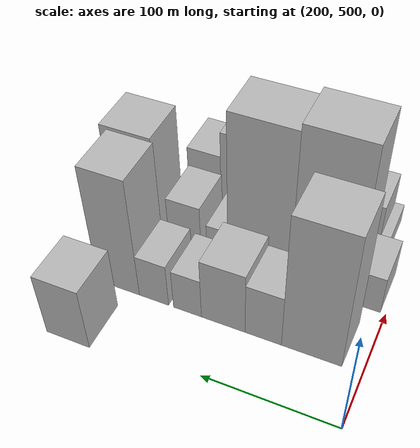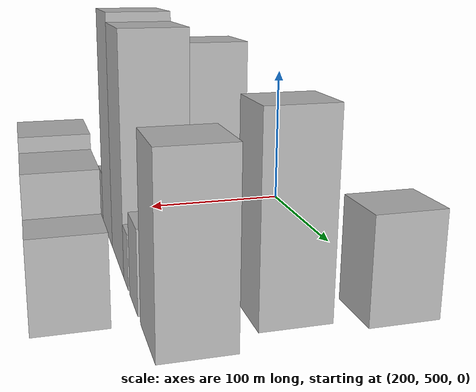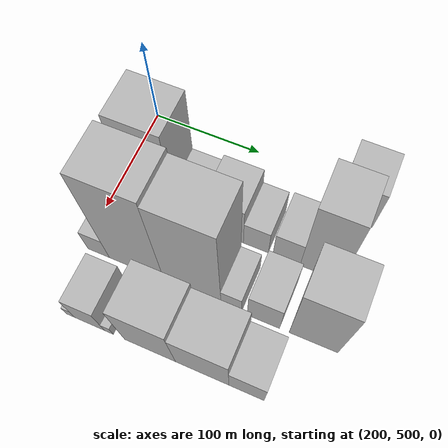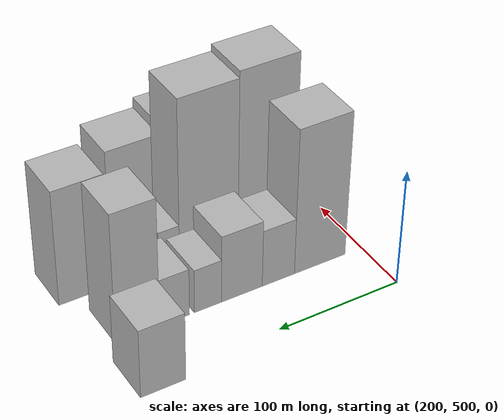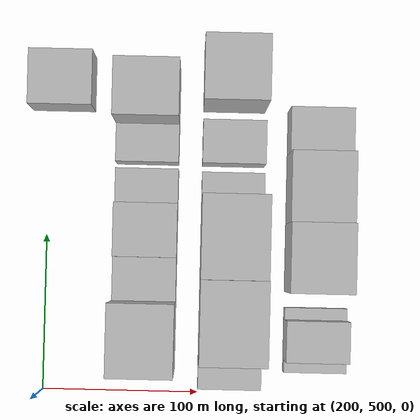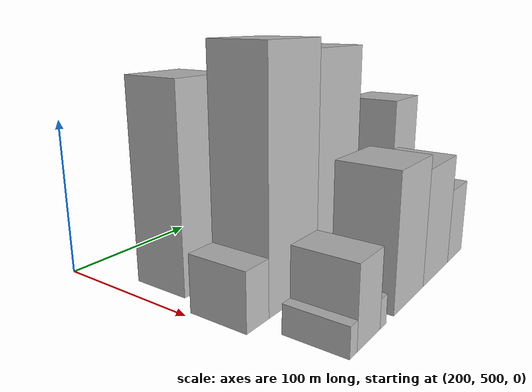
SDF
<sdf version="1.6">
 <world name="default">
  <model name="building_147">
   <static>1</static>
   <pose>210.0000 697.8146 0 0.000000 0.000000 0.000000</pose>
   <link name="link">
    <pose>0 0 30.00 0 0 0</pose>
    <collision name="collision"><geometry><box><size>40.0000 34.5260 60.0000</size></box></geometry></collision>
    <visual name="visual">
     <cast_shadows>0</cast_shadows>
     <geometry><box><size>40.0000 34.5260 60.0000</size></box></geometry>
     <material>
      <script>
       <uri>model://HANNAS_wall/materials/scripts</uri>
       <uri>model://HANNAS_wall/materials/textures</uri>
       <name>vrc/HANNAS_wall</name>
      </script>
     </material>
    </visual>
   </link>
  </model>
  <model name="building_193">
   <static>1</static>
   <pose>265.0000 537.1006 0 0.000000 0.000000 0.000000</pose>
   <link name="link">
    <pose>0 0 64.50 0 0 0</pose>
    <collision name="collision"><geometry><box><size>40.0000 44.1654 129.0000</size></box></geometry></collision>
    <visual name="visual">
     <cast_shadows>0</cast_shadows>
     <geometry><box><size>40.0000 44.1654 129.0000</size></box></geometry>
     <material>
      <script>
       <uri>model://HANNAS_wall/materials/scripts</uri>
       <uri>model://HANNAS_wall/materials/textures</uri>
       <name>vrc/HANNAS_wall</name>
      </script>
     </material>
    </visual>
   </link>
  </model>
  <model name="building_194">
   <static>1</static>
   <pose>265.0000 572.9187 0 0.000000 0.000000 0.000000</pose>
   <link name="link">
    <pose>0 0 25.50 0 0 0</pose>
    <collision name="collision"><geometry><box><size>40.0000 27.4708 51.0000</size></box></geometry></collision>
    <visual name="visual">
     <cast_shadows>0</cast_shadows>
     <geometry><box><size>40.0000 27.4708 51.0000</size></box></geometry>
     <material>
      <script>
       <uri>model://HANNAS_wall/materials/scripts</uri>
       <uri>model://HANNAS_wall/materials/textures</uri>
       <name>vrc/HANNAS_wall</name>
      </script>
     </material>
    </visual>
   </link>
  </model>
  <model name="building_195">
   <static>1</static>
   <pose>265.0000 603.5861 0 0.000000 0.000000 0.000000</pose>
   <link name="link">
    <pose>0 0 30.00 0 0 0</pose>
    <collision name="collision"><geometry><box><size>40.0000 33.8638 60.0000</size></box></geometry></collision>
    <visual name="visual">
     <cast_shadows>0</cast_shadows>
     <geometry><box><size>40.0000 33.8638 60.0000</size></box></geometry>
     <material>
      <script>
       <uri>model://HANNAS_wall/materials/scripts</uri>
       <uri>model://HANNAS_wall/materials/textures</uri>
       <name>vrc/HANNAS_wall</name>
      </script>
     </material>
    </visual>
   </link>
  </model>
  <model name="building_196">
   <static>1</static>
   <pose>265.0000 631.6752 0 0.000000 0.000000 0.000000</pose>
   <link name="link">
    <pose>0 0 19.50 0 0 0</pose>
    <collision name="collision"><geometry><box><size>40.0000 22.3145 39.0000</size></box></geometry></collision>
    <visual name="visual">
     <cast_shadows>0</cast_shadows>
     <geometry><box><size>40.0000 22.3145 39.0000</size></box></geometry>
     <material>
      <script>
       <uri>model://HANNAS_wall/materials/scripts</uri>
       <uri>model://HANNAS_wall/materials/textures</uri>
       <name>vrc/HANNAS_wall</name>
      </script>
     </material>
    </visual>
   </link>
  </model>
  <model name="building_197">
   <static>1</static>
   <pose>265.0000 658.7979 0 0.000000 0.000000 0.000000</pose>
   <link name="link">
    <pose>0 0 21.00 0 0 0</pose>
    <collision name="collision"><geometry><box><size>40.0000 23.9310 42.0000</size></box></geometry></collision>
    <visual name="visual">
     <cast_shadows>0</cast_shadows>
     <geometry><box><size>40.0000 23.9310 42.0000</size></box></geometry>
     <material>
      <script>
       <uri>model://HANNAS_wall/materials/scripts</uri>
       <uri>model://HANNAS_wall/materials/textures</uri>
       <name>vrc/HANNAS_wall</name>
      </script>
     </material>
    </visual>
   </link>
  </model>
  <model name="building_198">
   <static>1</static>
   <pose>265.0000 688.1856 0 0.000000 0.000000 0.000000</pose>
   <link name="link">
    <pose>0 0 57.00 0 0 0</pose>
    <collision name="collision"><geometry><box><size>40.0000 34.8444 114.0000</size></box></geometry></collision>
    <visual name="visual">
     <cast_shadows>0</cast_shadows>
     <geometry><box><size>40.0000 34.8444 114.0000</size></box></geometry>
     <material>
      <script>
       <uri>model://HANNAS_wall/materials/scripts</uri>
       <uri>model://HANNAS_wall/materials/textures</uri>
       <name>vrc/HANNAS_wall</name>
      </script>
     </material>
    </visual>
   </link>
  </model>
  <model name="building_245">
   <static>1</static>
   <pose>320.0000 514.0843 0 0.000000 0.000000 0.000000</pose>
   <link name="link">
    <pose>0 0 18.00 0 0 0</pose>
    <collision name="collision"><geometry><box><size>40.0000 19.9829 36.0000</size></box></geometry></collision>
    <visual name="visual">
     <cast_shadows>0</cast_shadows>
     <geometry><box><size>40.0000 19.9829 36.0000</size></box></geometry>
     <material>
      <script>
       <uri>model://HANNAS_wall/materials/scripts</uri>
       <uri>model://HANNAS_wall/materials/textures</uri>
       <name>vrc/HANNAS_wall</name>
      </script>
     </material>
    </visual>
   </link>
  </model>
  <model name="building_246">
   <static>1</static>
   <pose>320.0000 549.1203 0 0.000000 0.000000 0.000000</pose>
   <link name="link">
    <pose>0 0 75.00 0 0 0</pose>
    <collision name="collision"><geometry><box><size>40.0000 50.0892 150.0000</size></box></geometry></collision>
    <visual name="visual">
     <cast_shadows>0</cast_shadows>
     <geometry><box><size>40.0000 50.0892 150.0000</size></box></geometry>
     <material>
      <script>
       <uri>model://HANNAS_wall/materials/scripts</uri>
       <uri>model://HANNAS_wall/materials/textures</uri>
       <name>vrc/HANNAS_wall</name>
      </script>
     </material>
    </visual>
   </link>
  </model>
  <model name="building_247">
   <static>1</static>
   <pose>320.0000 599.2114 0 0.000000 0.000000 0.000000</pose>
   <link name="link">
    <pose>0 0 72.00 0 0 0</pose>
    <collision name="collision"><geometry><box><size>40.0000 50.0929 144.0000</size></box></geometry></collision>
    <visual name="visual">
     <cast_shadows>0</cast_shadows>
     <geometry><box><size>40.0000 50.0929 144.0000</size></box></geometry>
     <material>
      <script>
       <uri>model://HANNAS_wall/materials/scripts</uri>
       <uri>model://HANNAS_wall/materials/textures</uri>
       <name>vrc/HANNAS_wall</name>
      </script>
     </material>
    </visual>
   </link>
  </model>
  <model name="building_248">
   <static>1</static>
   <pose>320.0000 632.9484 0 0.000000 0.000000 0.000000</pose>
   <link name="link">
    <pose>0 0 16.50 0 0 0</pose>
    <collision name="collision"><geometry><box><size>40.0000 17.3810 33.0000</size></box></geometry></collision>
    <visual name="visual">
     <cast_shadows>0</cast_shadows>
     <geometry><box><size>40.0000 17.3810 33.0000</size></box></geometry>
     <material>
      <script>
       <uri>model://HANNAS_wall/materials/scripts</uri>
       <uri>model://HANNAS_wall/materials/textures</uri>
       <name>vrc/HANNAS_wall</name>
      </script>
     </material>
    </visual>
   </link>
  </model>
  <model name="building_249">
   <static>1</static>
   <pose>320.0000 660.3754 0 0.000000 0.000000 0.000000</pose>
   <link name="link">
    <pose>0 0 24.00 0 0 0</pose>
    <collision name="collision"><geometry><box><size>40.0000 27.4731 48.0000</size></box></geometry></collision>
    <visual name="visual">
     <cast_shadows>0</cast_shadows>
     <geometry><box><size>40.0000 27.4731 48.0000</size></box></geometry>
     <material>
      <script>
       <uri>model://HANNAS_wall/materials/scripts</uri>
       <uri>model://HANNAS_wall/materials/textures</uri>
       <name>vrc/HANNAS_wall</name>
      </script>
     </material>
    </visual>
   </link>
  </model>
  <model name="building_250">
   <static>1</static>
   <pose>320.0000 702.2115 0 0.000000 0.000000 0.000000</pose>
   <link name="link">
    <pose>0 0 51.00 0 0 0</pose>
    <collision name="collision"><geometry><box><size>40.0000 40.1990 102.0000</size></box></geometry></collision>
    <visual name="visual">
     <cast_shadows>0</cast_shadows>
     <geometry><box><size>40.0000 40.1990 102.0000</size></box></geometry>
     <material>
      <script>
       <uri>model://HANNAS_wall/materials/scripts</uri>
       <uri>model://HANNAS_wall/materials/textures</uri>
       <name>vrc/HANNAS_wall</name>
      </script>
     </material>
    </visual>
   </link>
  </model>
  <model name="building_296">
   <static>1</static>
   <pose>375.0000 518.7042 0 0.000000 0.000000 0.000000</pose>
   <link name="link">
    <pose>0 0 9.00 0 0 0</pose>
    <collision name="collision"><geometry><box><size>40.0000 7.5901 18.0000</size></box></geometry></collision>
    <visual name="visual">
     <cast_shadows>0</cast_shadows>
     <geometry><box><size>40.0000 7.5901 18.0000</size></box></geometry>
     <material>
      <script>
       <uri>model://HANNAS_wall/materials/scripts</uri>
       <uri>model://HANNAS_wall/materials/textures</uri>
       <name>vrc/HANNAS_wall</name>
      </script>
     </material>
    </visual>
   </link>
  </model>
  <model name="building_297">
   <static>1</static>
   <pose>375.0000 535.6427 0 0.000000 0.000000 0.000000</pose>
   <link name="link">
    <pose>0 0 24.00 0 0 0</pose>
    <collision name="collision"><geometry><box><size>40.0000 26.2870 48.0000</size></box></geometry></collision>
    <visual name="visual">
     <cast_shadows>0</cast_shadows>
     <geometry><box><size>40.0000 26.2870 48.0000</size></box></geometry>
     <material>
      <script>
       <uri>model://HANNAS_wall/materials/scripts</uri>
       <uri>model://HANNAS_wall/materials/textures</uri>
       <name>vrc/HANNAS_wall</name>
      </script>
     </material>
    </visual>
   </link>
  </model>
  <model name="building_298">
   <static>1</static>
   <pose>375.0000 552.6358 0 0.000000 0.000000 0.000000</pose>
   <link name="link">
    <pose>0 0 9.00 0 0 0</pose>
    <collision name="collision"><geometry><box><size>40.0000 7.6992 18.0000</size></box></geometry></collision>
    <visual name="visual">
     <cast_shadows>0</cast_shadows>
     <geometry><box><size>40.0000 7.6992 18.0000</size></box></geometry>
     <material>
      <script>
       <uri>model://HANNAS_wall/materials/scripts</uri>
       <uri>model://HANNAS_wall/materials/textures</uri>
       <name>vrc/HANNAS_wall</name>
      </script>
     </material>
    </visual>
   </link>
  </model>
  <model name="building_299">
   <static>1</static>
   <pose>375.0000 588.3644 0 0.000000 0.000000 0.000000</pose>
   <link name="link">
    <pose>0 0 42.00 0 0 0</pose>
    <collision name="collision"><geometry><box><size>40.0000 43.7580 84.0000</size></box></geometry></collision>
    <visual name="visual">
     <cast_shadows>0</cast_shadows>
     <geometry><box><size>40.0000 43.7580 84.0000</size></box></geometry>
     <material>
      <script>
       <uri>model://HANNAS_wall/materials/scripts</uri>
       <uri>model://HANNAS_wall/materials/textures</uri>
       <name>vrc/HANNAS_wall</name>
      </script>
     </material>
    </visual>
   </link>
  </model>
  <model name="building_300">
   <static>1</static>
   <pose>375.0000 632.4005 0 0.000000 0.000000 0.000000</pose>
   <link name="link">
    <pose>0 0 37.50 0 0 0</pose>
    <collision name="collision"><geometry><box><size>40.0000 44.3141 75.0000</size></box></geometry></collision>
    <visual name="visual">
     <cast_shadows>0</cast_shadows>
     <geometry><box><size>40.0000 44.3141 75.0000</size></box></geometry>
     <material>
      <script>
       <uri>model://HANNAS_wall/materials/scripts</uri>
       <uri>model://HANNAS_wall/materials/textures</uri>
       <name>vrc/HANNAS_wall</name>
      </script>
     </material>
    </visual>
   </link>
  </model>
  <model name="building_301">
   <static>1</static>
   <pose>375.0000 668.8175 0 0.000000 0.000000 0.000000</pose>
   <link name="link">
    <pose>0 0 25.50 0 0 0</pose>
    <collision name="collision"><geometry><box><size>40.0000 28.5199 51.0000</size></box></geometry></collision>
    <visual name="visual">
     <cast_shadows>0</cast_shadows>
     <geometry><box><size>40.0000 28.5199 51.0000</size></box></geometry>
     <material>
      <script>
       <uri>model://HANNAS_wall/materials/scripts</uri>
       <uri>model://HANNAS_wall/materials/textures</uri>
       <name>vrc/HANNAS_wall</name>
      </script>
     </material>
    </visual>
   </link>
  </model>
 </world>
</sdf>
